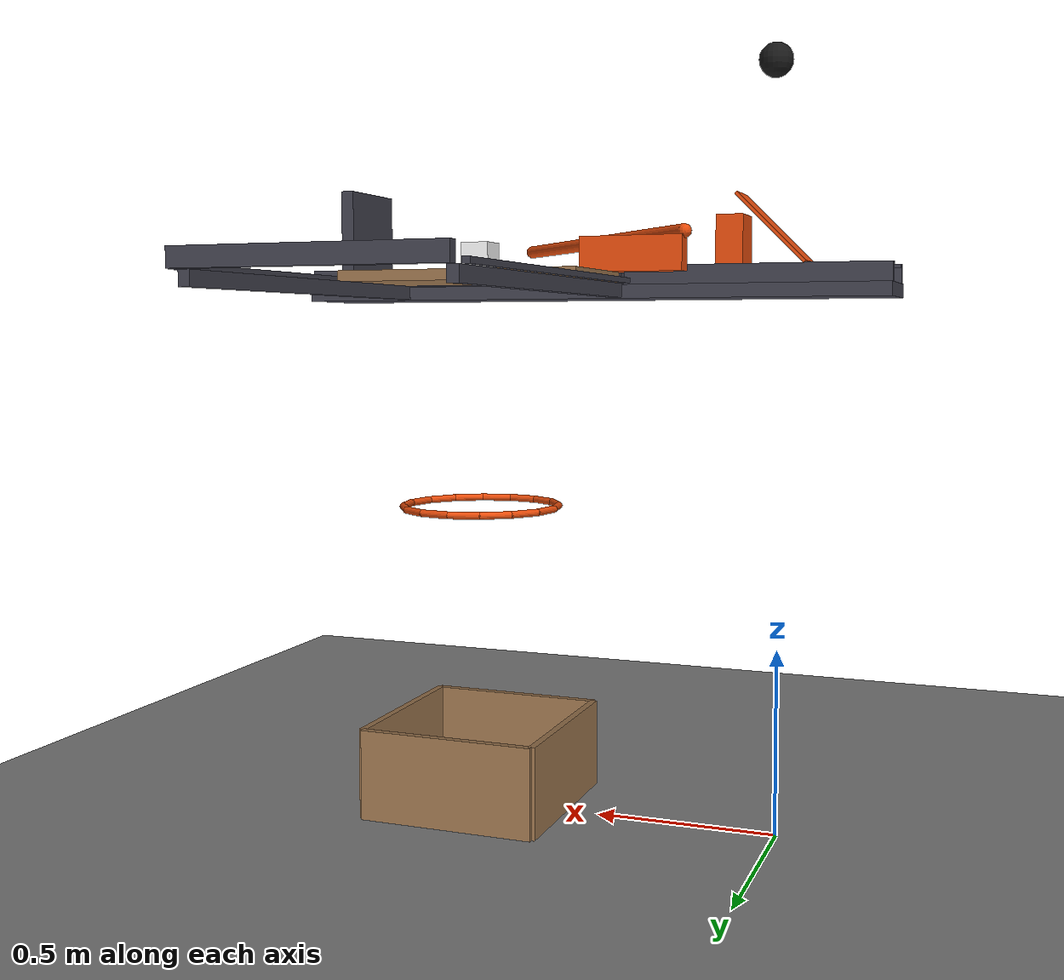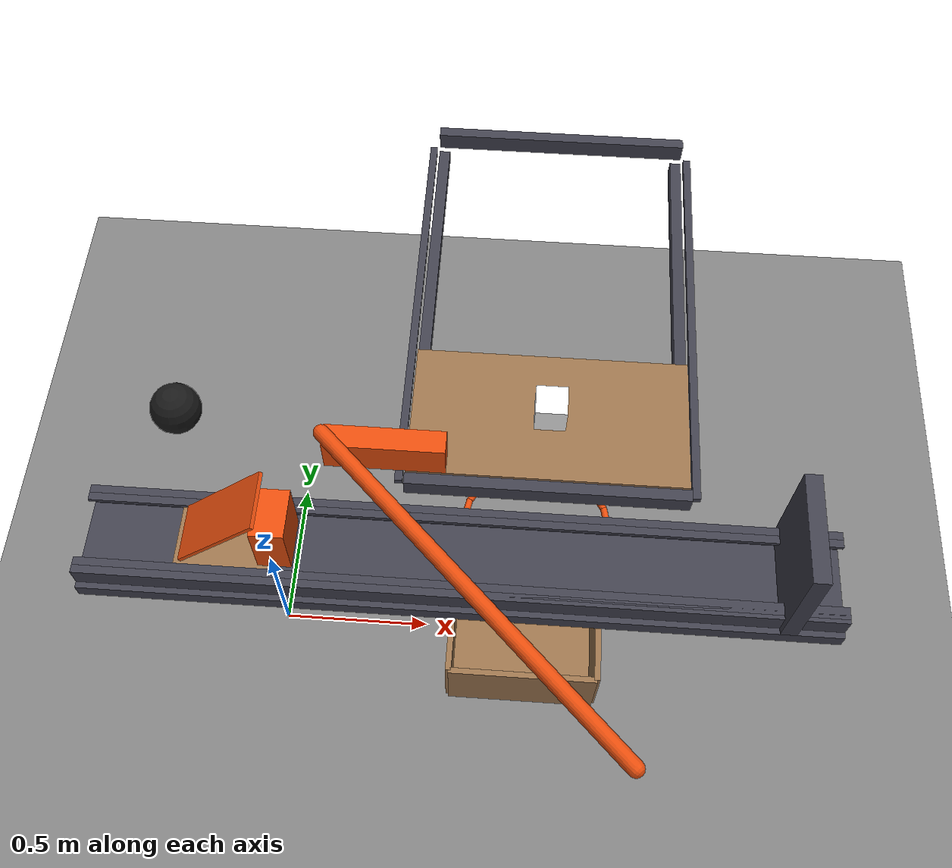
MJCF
<mujoco model="drop_driven_crosswise_release">
  <compiler angle="radian"/>
  <option timestep="0.002"/>
  <worldbody>
    <geom name="floor" type="plane" size="5 5 0.1" friction="0.8 0.005 0.002"/>
    <body name="box">
      <geom name="box_base" type="box" pos="0.85 0 0.01" size="0.25 0.25 0.01" friction="0.8 0.01 0.004" solref="0.01 1" rgba="0.6 0.45 0.3 1"/>
      <geom name="box_near_wall" type="box" pos="0.6 0 0.125" size="0.01 0.25 0.125" friction="0.8 0.01 0.004" solref="0.01 1" rgba="0.6 0.45 0.3 1"/>
      <geom name="box_far_wall" type="box" pos="1.1 0 0.125" size="0.01 0.25 0.125" friction="0.8 0.01 0.004" solref="0.01 1" rgba="0.6 0.45 0.3 1"/>
      <geom name="box_left_wall" type="box" pos="0.85 0.25 0.125" size="0.25 0.01 0.125" friction="0.8 0.01 0.004" solref="0.01 1" rgba="0.6 0.45 0.3 1"/>
      <geom name="box_right_wall" type="box" pos="0.85 -0.25 0.125" size="0.25 0.01 0.125" friction="0.8 0.01 0.004" solref="0.01 1" rgba="0.6 0.45 0.3 1"/>
    </body>
    <body name="hoop">
      <geom name="hoop_00" type="capsule" size="0.01" fromto="1.07 0 0.85 1.05325 0.0841904 0.85" rgba="0.9 0.3 0.05 1"/>
      <geom name="hoop_01" type="capsule" size="0.01" fromto="1.05325 0.0841904 0.85 1.00556 0.155563 0.85" rgba="0.9 0.3 0.05 1"/>
      <geom name="hoop_02" type="capsule" size="0.01" fromto="1.00556 0.155563 0.85 0.93419 0.203253 0.85" rgba="0.9 0.3 0.05 1"/>
      <geom name="hoop_03" type="capsule" size="0.01" fromto="0.93419 0.203253 0.85 0.85 0.22 0.85" rgba="0.9 0.3 0.05 1"/>
      <geom name="hoop_04" type="capsule" size="0.01" fromto="0.85 0.22 0.85 0.76581 0.203253 0.85" rgba="0.9 0.3 0.05 1"/>
      <geom name="hoop_05" type="capsule" size="0.01" fromto="0.76581 0.203253 0.85 0.694437 0.155563 0.85" rgba="0.9 0.3 0.05 1"/>
      <geom name="hoop_06" type="capsule" size="0.01" fromto="0.694437 0.155563 0.85 0.646747 0.0841904 0.85" rgba="0.9 0.3 0.05 1"/>
      <geom name="hoop_07" type="capsule" size="0.01" fromto="0.646747 0.0841904 0.85 0.63 2.69422e-17 0.85" rgba="0.9 0.3 0.05 1"/>
      <geom name="hoop_08" type="capsule" size="0.01" fromto="0.63 2.69422e-17 0.85 0.646747 -0.0841904 0.85" rgba="0.9 0.3 0.05 1"/>
      <geom name="hoop_09" type="capsule" size="0.01" fromto="0.646747 -0.0841904 0.85 0.694437 -0.155563 0.85" rgba="0.9 0.3 0.05 1"/>
      <geom name="hoop_10" type="capsule" size="0.01" fromto="0.694437 -0.155563 0.85 0.76581 -0.203253 0.85" rgba="0.9 0.3 0.05 1"/>
      <geom name="hoop_11" type="capsule" size="0.01" fromto="0.76581 -0.203253 0.85 0.85 -0.22 0.85" rgba="0.9 0.3 0.05 1"/>
      <geom name="hoop_12" type="capsule" size="0.01" fromto="0.85 -0.22 0.85 0.93419 -0.203253 0.85" rgba="0.9 0.3 0.05 1"/>
      <geom name="hoop_13" type="capsule" size="0.01" fromto="0.93419 -0.203253 0.85 1.00556 -0.155563 0.85" rgba="0.9 0.3 0.05 1"/>
      <geom name="hoop_14" type="capsule" size="0.01" fromto="1.00556 -0.155563 0.85 1.05325 -0.0841904 0.85" rgba="0.9 0.3 0.05 1"/>
      <geom name="hoop_15" type="capsule" size="0.01" fromto="1.05325 -0.0841904 0.85 1.07 -5.38845e-17 0.85" rgba="0.9 0.3 0.05 1"/>
    </body>
    <body name="first slide deck">
      <geom name="first slide deck" type="box" pos="0.65 -0.4 1.46" size="0.9 0.13 0.02" friction="0.005 0.005 0.0001" rgba="0.25 0.25 0.3 1"/>
    </body>
    <body name="first right guide">
      <geom name="first right guide" type="box" pos="0.65 -0.505 1.5075" size="0.9 0.01 0.0275" friction="0.005 0.005 0.0001" rgba="0.25 0.25 0.3 1"/>
    </body>
    <body name="first left guide">
      <geom name="first left guide" type="box" pos="0.65 -0.295 1.5075" size="0.9 0.01 0.0275" friction="0.005 0.005 0.0001" rgba="0.25 0.25 0.3 1"/>
    </body>
    <body name="first right retaining lip">
      <geom name="first right retaining lip" type="box" pos="0.65 -0.49 1.53" size="0.9 0.015 0.005" friction="0.005 0.005 0.0001" rgba="0.25 0.25 0.3 1"/>
    </body>
    <body name="first left retaining lip">
      <geom name="first left retaining lip" type="box" pos="0.65 -0.31 1.53" size="0.9 0.015 0.005" friction="0.005 0.005 0.0001" rgba="0.25 0.25 0.3 1"/>
    </body>
    <body name="first forward stop">
      <geom name="first forward stop" type="box" pos="1.42 -0.4 1.63" size="0.02 0.13 0.15" solref="0.01 1" rgba="0.25 0.25 0.3 1"/>
    </body>
    <body name="slider1" pos="0.1 -0.4 1.64">
      <freejoint/>
      <geom name="slider1" type="box" pos="0 0 0" size="0.141421 0.07 0.005" euler="0 -0.785398 0" mass="0.08" friction="0.01 0.005 0.0001" solref="0.01 1" rgba="0.9 0.3 0.05 1"/>
      <geom name="first carriage" type="box" pos="0 0 -0.14" size="0.12 0.09 0.02" mass="0.2" friction="0.005 0.005 0.0001" solref="0.01 1" rgba="0.6 0.45 0.3 1"/>
      <geom name="first pusher" type="box" pos="0.12 0 -0.04" size="0.04 0.06 0.08" mass="0.04" friction="0.005 0.005 0.0001" solref="0.01 1" rgba="0.9 0.3 0.05 1"/>
    </body>
    <body name="second near bearing">
      <geom name="second near bearing" type="box" pos="0.515 0.35 1.46" size="0.015 0.55 0.02" friction="0.002 0.005 0.0001" rgba="0.25 0.25 0.3 1"/>
    </body>
    <body name="second far bearing">
      <geom name="second far bearing" type="box" pos="1.185 0.35 1.46" size="0.015 0.55 0.02" friction="0.002 0.005 0.0001" rgba="0.25 0.25 0.3 1"/>
    </body>
    <body name="second near guide">
      <geom name="second near guide" type="box" pos="0.484 0.35 1.4875" size="0.01 0.55 0.0075" friction="0.002 0.005 0.0001" rgba="0.25 0.25 0.3 1"/>
    </body>
    <body name="second far guide">
      <geom name="second far guide" type="box" pos="1.216 0.35 1.4875" size="0.01 0.55 0.0075" friction="0.002 0.005 0.0001" rgba="0.25 0.25 0.3 1"/>
    </body>
    <body name="second starting stop">
      <geom name="second starting stop" type="box" pos="0.85 -0.21 1.505" size="0.35 0.015 0.025" solref="0.01 1" rgba="0.25 0.25 0.3 1"/>
    </body>
    <body name="second withdrawal stop">
      <geom name="second withdrawal stop" type="box" pos="0.85 0.93 1.505" size="0.35 0.015 0.025" solref="0.01 1" rgba="0.25 0.25 0.3 1"/>
    </body>
    <body name="slider2" pos="0.85 0 1.495">
      <freejoint/>
      <geom name="slider2" type="box" pos="0 0 0" size="0.35 0.18 0.015" mass="0.25" friction="0.002 0.005 0.0001" solref="0.01 1" rgba="0.6 0.45 0.3 1"/>
      <geom name="crosswise cam" type="capsule" size="0.02" fromto="-0.55 -0.15 0.125 0.2 -0.9 0.125" mass="0.08" friction="0.002 0.005 0.0001" solref="0.01 1" rgba="0.9 0.3 0.05 1"/>
      <geom name="cam connector" type="box" pos="-0.4 -0.15 0.065" size="0.15 0.03 0.05" mass="0.04" friction="0.002 0.005 0.0001" solref="0.01 1" rgba="0.9 0.3 0.05 1"/>
    </body>
    <body name="block" pos="0.85 0 1.55">
      <freejoint/>
      <geom name="block" type="box" pos="0 0 0" size="0.04 0.04 0.04" mass="0.12" friction="0.002 0.005 0.0001" solref="0.01 1" rgba="0.95 0.95 0.95 1"/>
    </body>
    <body name="ball" pos="0.1 -0.4 2.1178">
      <freejoint/>
      <geom name="ball" type="sphere" pos="0 0 0" size="0.05" mass="2" condim="6" friction="0.01 0.001 0.001" solref="0.01 1" rgba="0.1 0.1 0.1 1"/>
    </body>
  </worldbody>
  <keyframe>
    <key name="start" qpos="0.1 -0.4 1.64 1 0 0 0 0.85 0 1.495 1 0 0 0 0.85 0 1.55 1 0 0 0 0.1 -0.4 2.1178 1 0 0 0" qvel="0 0 0 0 0 0 0 0 0 0 0 0 0 0 0 0 0 0 0 0 0 0 0 0"/>
  </keyframe>
</mujoco>
